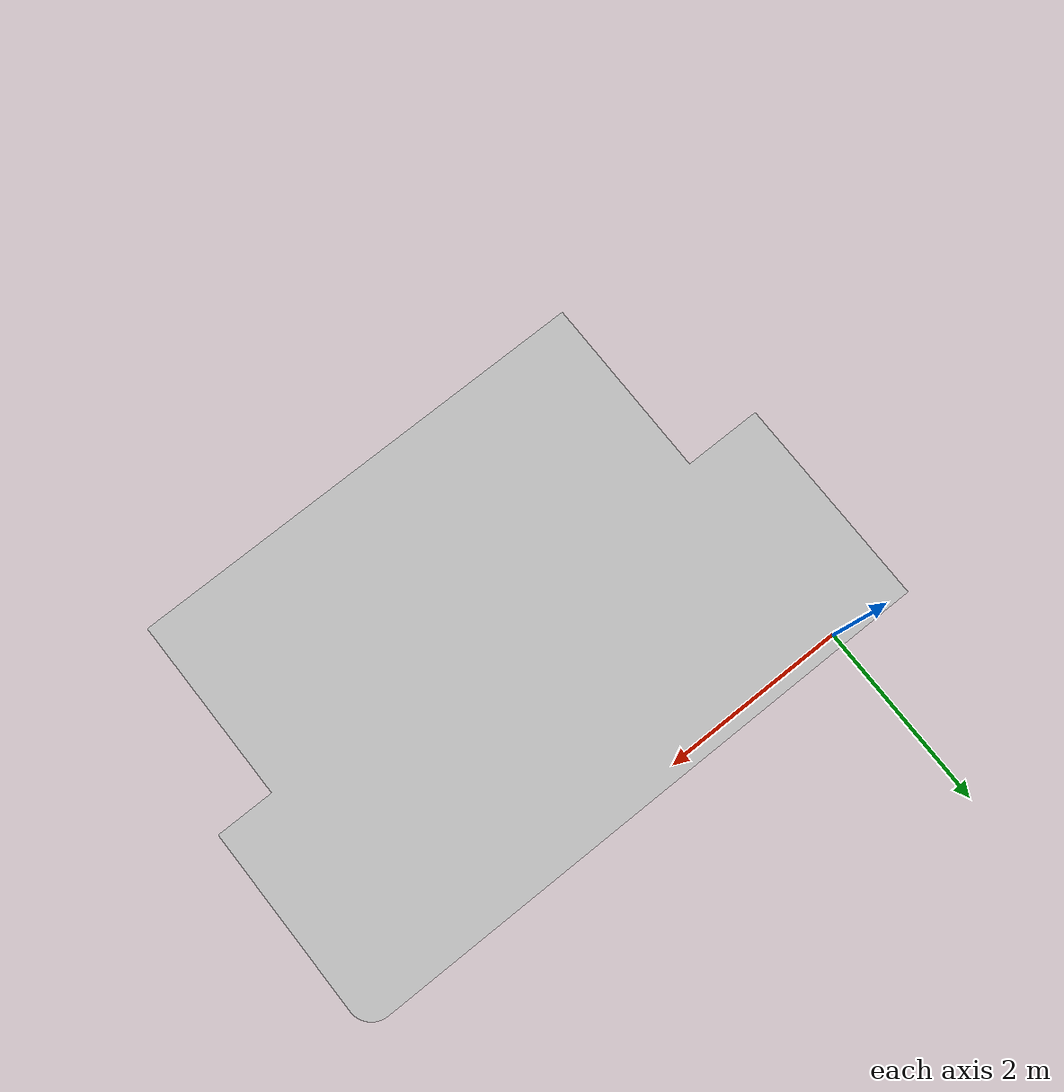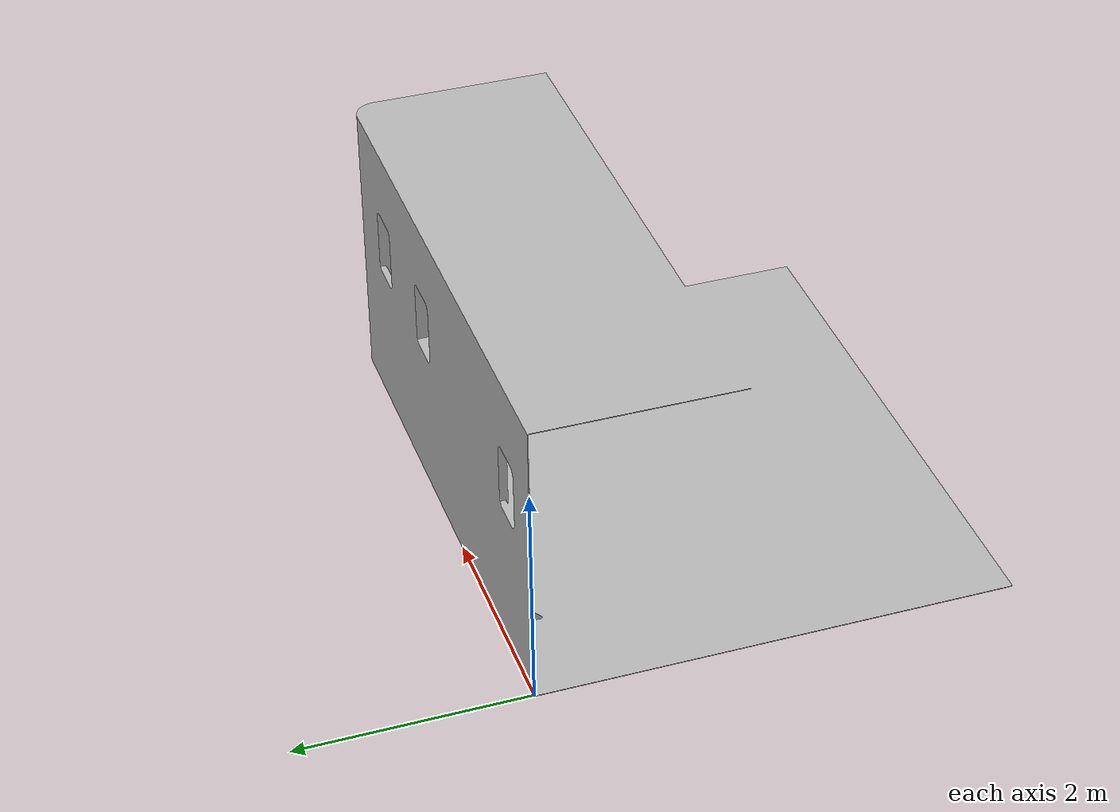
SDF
<?xml version="1.0" ?>
<sdf version="1.4">
  <model name="ship_interior_corner">
    <static>true</static>
    <link name="link">
      <inertial>
        <mass>1000</mass>
      </inertial>
      <collision name="collision">
        <geometry>
          <mesh>
            <uri>model://ship_interior_corner/meshes/ship_interior_corner.stl</uri>
          </mesh>
        </geometry>
      </collision>
      <visual name="visual">
        <geometry>
          <mesh>
            <uri>model://ship_interior_corner/meshes/ship_interior_corner.stl</uri>
          </mesh>
        </geometry>
      </visual>
    </link>
  </model>
</sdf>
